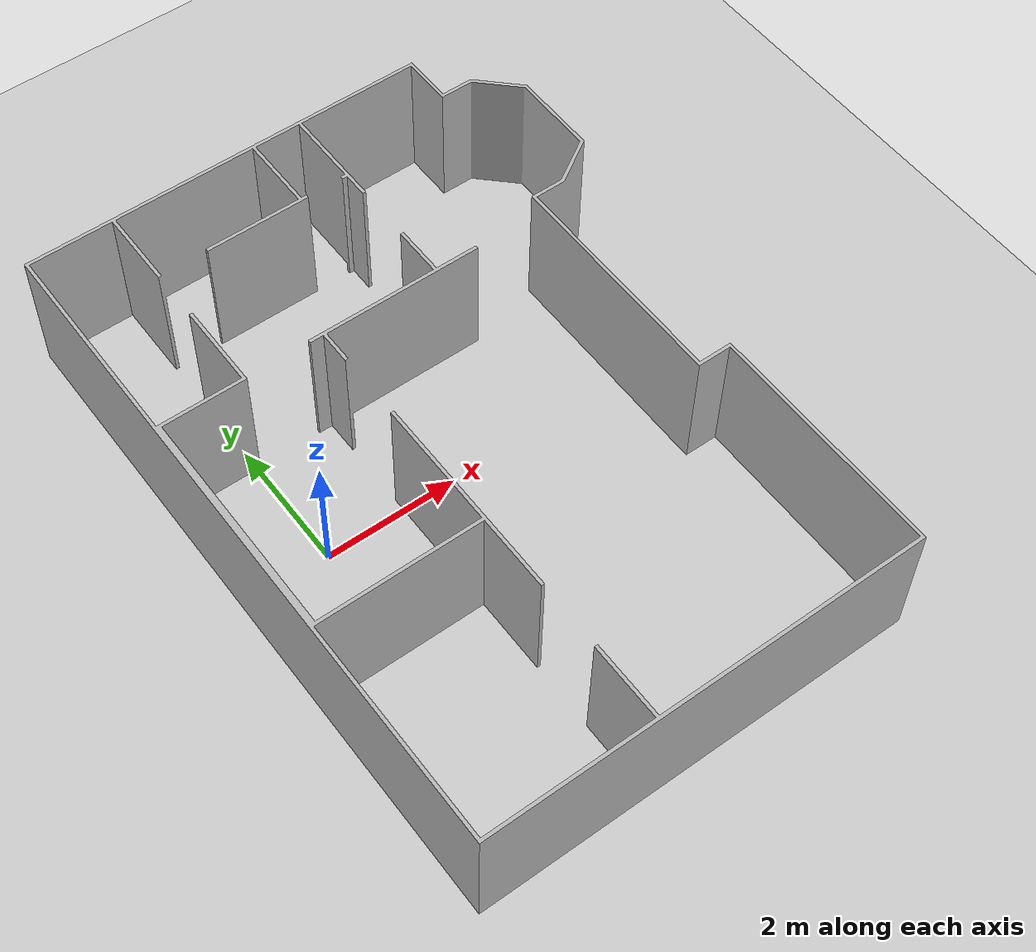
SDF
<sdf version="1.4">
 <world name="default">
  <light name="sun" type="directional">
   <pose>0 0 10 0 -0 0</pose>
   <diffuse>0.8 0.8 0.8 1</diffuse>
   <specular>0.2 0.2 0.2 1</specular>
   <attenuation>
    <range>1000</range>
    <constant>0.9</constant>
    <linear>0.01</linear>
    <quadratic>0.001</quadratic>
   </attenuation>
   <direction>-0.5 0.1 -0.9</direction>
  </light>
  <model name="ground_plane">
   <static>1</static>
   <link name="link">
    <collision name="collision">
     <geometry><plane><normal>0 0 1</normal><size>100 100</size></plane></geometry>
     <surface><friction><ode><mu>100</mu><mu2>50</mu2></ode></friction></surface>
    </collision>
    <visual name="visual">
     <cast_shadows>0</cast_shadows>
     <geometry><plane><normal>0 0 1</normal><size>100 100</size></plane></geometry>
     <material>
      <script><uri>file://media/materials/scripts/gazebo.material</uri><name>Gazebo/Grey</name></script>
     </material>
    </visual>
    <velocity_decay><linear>0</linear><angular>0</angular></velocity_decay>
   </link>
  </model>
  <physics type="ode">
   <max_step_size>0.001</max_step_size>
   <real_time_factor>1</real_time_factor>
   <real_time_update_rate>1000</real_time_update_rate>
   <gravity>0 0 -9.8</gravity>
  </physics>
  <scene><ambient>0.4 0.4 0.4 1</ambient><background>0.7 0.7 0.7 1</background><shadows>1</shadows></scene>
  <spherical_coordinates>
   <surface_model>EARTH_WGS84</surface_model>
   <latitude_deg>0</latitude_deg>
   <longitude_deg>0</longitude_deg>
   <elevation>0</elevation>
   <heading_deg>0</heading_deg>
  </spherical_coordinates>
  <model name="Home Floor plan">
   <link name="home_floor_plan_v3">
    <inertial>
     <pose>1.6374 0.39093 1 0 -0 0</pose>
     <mass>5670.6</mass>
     <inertia>
      <ixx>98767.2</ixx>
      <ixy>7.6596e-12</ixy>
      <ixz>8.87434e-12</ixz>
      <iyy>66719.1</iyy>
      <iyz>1798.09</iyz>
      <izz>35828.5</izz>
     </inertia>
    </inertial>
    <collision name="home_floor_plan_v3_collision">
     <pose>0 0 0 1.5708 5.55112e-17 -1.5708</pose>
     <geometry>
      <mesh><scale>1 1 1</scale><uri>model://home_floor_plan_v3/meshes/home_floor_plan_v3.STL</uri></mesh>
     </geometry>
    </collision>
    <visual name="home_floor_plan_v3_visual">
     <pose>0 0 0 1.5708 5.55112e-17 -1.5708</pose>
     <geometry>
      <mesh><scale>1 1 1</scale><uri>model://home_floor_plan_v3/meshes/home_floor_plan_v3.STL</uri></mesh>
     </geometry>
    </visual>
    <velocity_decay><linear>0</linear><angular>0</angular></velocity_decay>
   </link>
   <pose>1.7e-05 -1.8e-05 -2e-06 1e-06 4e-06 -2.1e-05</pose>
   <static>0</static>
  </model>
 </world>
</sdf>
